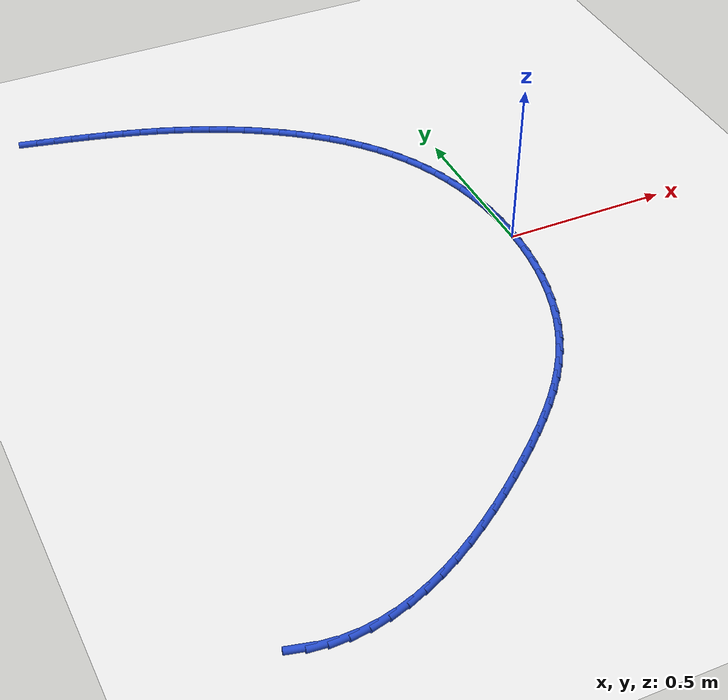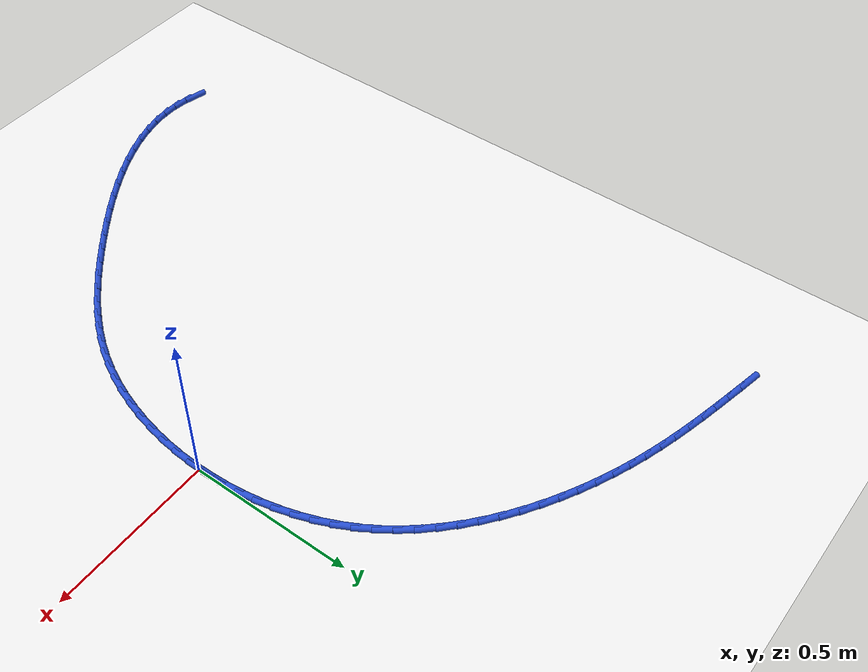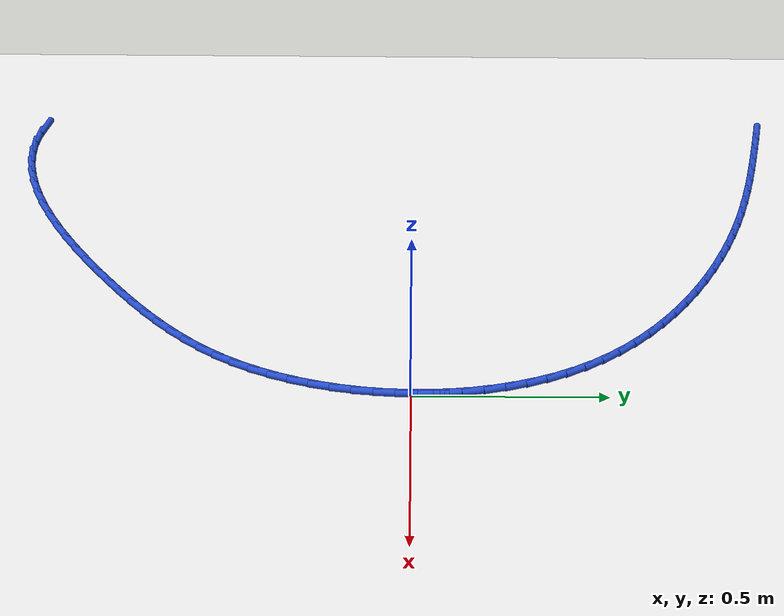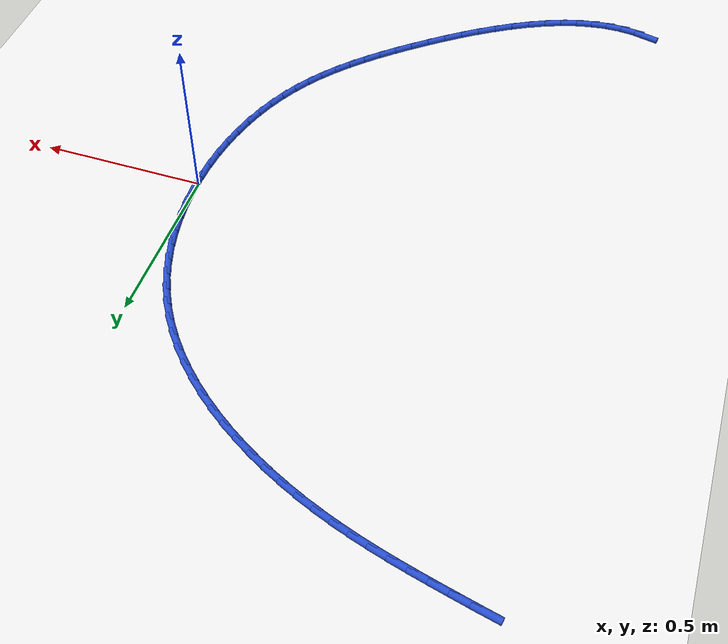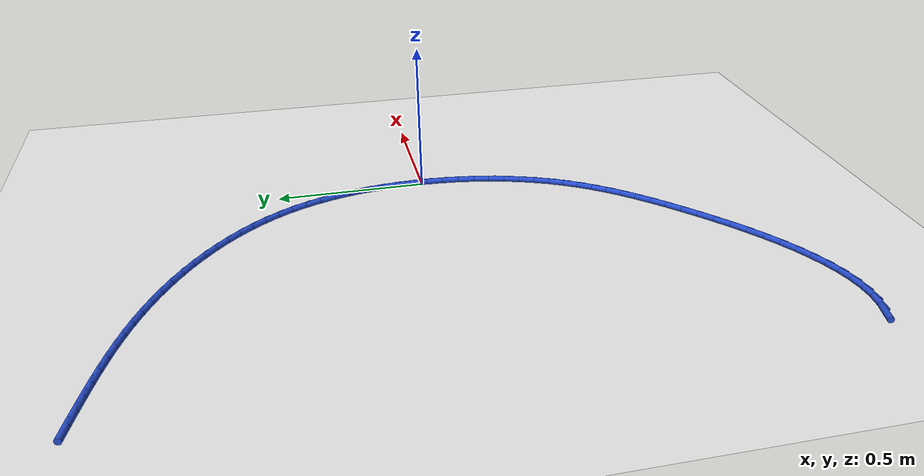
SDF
<sdf version="1.6">
 <world name="default">
  <model name="ground_plane">
   <static>1</static>
   <link name="link">
    <collision name="collision">
     <geometry><plane><normal>0 0 1</normal><size>100 100</size></plane></geometry>
     <surface><friction><ode><mu>100</mu><mu2>50</mu2></ode></friction></surface>
    </collision>
    <visual name="visual">
     <cast_shadows>0</cast_shadows>
     <geometry><plane><normal>0 0 1</normal><size>100 100</size></plane></geometry>
     <material>
      <script><uri>file://media/materials/scripts/gazebo.material</uri><name>Gazebo/WhiteGlow</name></script>
     </material>
    </visual>
   </link>
  </model>
  <model name="line">
   <link name="link_0">
    <pose>3.122502256758253e-17 -4.163336342344337e-17 0.01 0 1.57 -1.5531928244419682</pose>
    <collision name="collision">
     <geometry><cylinder><radius>0.01</radius><length>0.08</length></cylinder></geometry>
    </collision>
    <visual name="visual">
     <material>
      <script><name>Gazebo/Blue</name><uri>file://media/materials/scripts/gazebo.material</uri></script>
     </material>
     <geometry><cylinder><radius>0.01</radius><length>0.08</length></cylinder></geometry>
    </visual>
   </link>
   <link name="link_1">
    <pose>-0.0009847182210714668 0.05593298897689367 0.01 0 1.57 -1.4999605406898893</pose>
    <collision name="collision">
     <geometry><cylinder><radius>0.01</radius><length>0.08</length></cylinder></geometry>
    </collision>
    <visual name="visual">
     <material>
      <script><name>Gazebo/Blue</name><uri>file://media/materials/scripts/gazebo.material</uri></script>
     </material>
     <geometry><cylinder><radius>0.01</radius><length>0.08</length></cylinder></geometry>
    </visual>
   </link>
   <link name="link_2">
    <pose>-0.004936106482973937 0.1116220311312734 0.01 0 1.57 -1.4450767713447716</pose>
    <collision name="collision">
     <geometry><cylinder><radius>0.01</radius><length>0.08</length></cylinder></geometry>
    </collision>
    <visual name="visual">
     <material>
      <script><name>Gazebo/Blue</name><uri>file://media/materials/scripts/gazebo.material</uri></script>
     </material>
     <geometry><cylinder><radius>0.01</radius><length>0.08</length></cylinder></geometry>
    </visual>
   </link>
   <link name="link_3">
    <pose>-0.011914242280985182 0.16683486485001273 0.01 0 1.57 -1.3881900462207475</pose>
    <collision name="collision">
     <geometry><cylinder><radius>0.01</radius><length>0.08</length></cylinder></geometry>
    </collision>
    <visual name="visual">
     <material>
      <script><name>Gazebo/Blue</name><uri>file://media/materials/scripts/gazebo.material</uri></script>
     </material>
     <geometry><cylinder><radius>0.01</radius><length>0.08</length></cylinder></geometry>
    </visual>
   </link>
   <link name="link_4">
    <pose>-0.021979203110383025 0.221339228519985 0.01 0 1.57 -1.3289661561242723</pose>
    <collision name="collision">
     <geometry><cylinder><radius>0.01</radius><length>0.08</length></cylinder></geometry>
    </collision>
    <visual name="visual">
     <material>
      <script><name>Gazebo/Blue</name><uri>file://media/materials/scripts/gazebo.material</uri></script>
     </material>
     <geometry><cylinder><radius>0.01</radius><length>0.08</length></cylinder></geometry>
    </visual>
   </link>
   <link name="link_5">
    <pose>-0.035191066466445285 0.2749028605280639 0.01 0 1.57 -1.267098393019506</pose>
    <collision name="collision">
     <geometry><cylinder><radius>0.01</radius><length>0.08</length></cylinder></geometry>
    </collision>
    <visual name="visual">
     <material>
      <script><name>Gazebo/Blue</name><uri>file://media/materials/scripts/gazebo.material</uri></script>
     </material>
     <geometry><cylinder><radius>0.01</radius><length>0.08</length></cylinder></geometry>
    </visual>
   </link>
   <link name="link_6">
    <pose>-0.05160990984444981 0.3272934992611229 0.01 0 1.57 -1.2023222558466118</pose>
    <collision name="collision">
     <geometry><cylinder><radius>0.01</radius><length>0.08</length></cylinder></geometry>
    </collision>
    <visual name="visual">
     <material>
      <script><name>Gazebo/Blue</name><uri>file://media/materials/scripts/gazebo.material</uri></script>
     </material>
     <geometry><cylinder><radius>0.01</radius><length>0.08</length></cylinder></geometry>
    </visual>
   </link>
   <link name="link_7">
    <pose>-0.07129581073967439 0.37827888310603563 0.01 0 1.57 -1.134434927907412</pose>
    <collision name="collision">
     <geometry><cylinder><radius>0.01</radius><length>0.08</length></cylinder></geometry>
    </collision>
    <visual name="visual">
     <material>
      <script><name>Gazebo/Blue</name><uri>file://media/materials/scripts/gazebo.material</uri></script>
     </material>
     <geometry><cylinder><radius>0.01</radius><length>0.08</length></cylinder></geometry>
    </visual>
   </link>
   <link name="link_8">
    <pose>-0.09430884664739686 0.4276267504496754 0.01 0 1.57 -1.063331959550364</pose>
    <collision name="collision">
     <geometry><cylinder><radius>0.01</radius><length>0.08</length></cylinder></geometry>
    </collision>
    <visual name="visual">
     <material>
      <script><name>Gazebo/Blue</name><uri>file://media/materials/scripts/gazebo.material</uri></script>
     </material>
     <geometry><cylinder><radius>0.01</radius><length>0.08</length></cylinder></geometry>
    </visual>
   </link>
   <link name="link_9">
    <pose>-0.12070854376392275 0.4751052794550399 0.01 0 1.57 -0.9911056869096945</pose>
    <collision name="collision">
     <geometry><cylinder><radius>0.01</radius><length>0.08</length></cylinder></geometry>
    </collision>
    <visual name="visual">
     <material>
      <script><name>Gazebo/Blue</name><uri>file://media/materials/scripts/gazebo.material</uri></script>
     </material>
     <geometry><cylinder><radius>0.01</radius><length>0.08</length></cylinder></geometry>
    </visual>
   </link>
   <link name="link_10">
    <pose>-0.15046500735781818 0.5205539801594176 0.01 0 1.57 -0.9223022229733996</pose>
    <collision name="collision">
     <geometry><cylinder><radius>0.01</radius><length>0.08</length></cylinder></geometry>
    </collision>
    <visual name="visual">
     <material>
      <script><name>Gazebo/Blue</name><uri>file://media/materials/scripts/gazebo.material</uri></script>
     </material>
     <geometry><cylinder><radius>0.01</radius><length>0.08</length></cylinder></geometry>
    </visual>
   </link>
   <link name="link_11">
    <pose>-0.18336087672037601 0.5639619058878136 0.01 0 1.57 -0.8575902184803497</pose>
    <collision name="collision">
     <geometry><cylinder><radius>0.01</radius><length>0.08</length></cylinder></geometry>
    </collision>
    <visual name="visual">
     <material>
      <script><name>Gazebo/Blue</name><uri>file://media/materials/scripts/gazebo.material</uri></script>
     </material>
     <geometry><cylinder><radius>0.01</radius><length>0.08</length></cylinder></geometry>
    </visual>
   </link>
   <link name="link_12">
    <pose>-0.21915519316605117 0.6053369342825364 0.01 0 1.57 -0.7969424181860959</pose>
    <collision name="collision">
     <geometry><cylinder><radius>0.01</radius><length>0.08</length></cylinder></geometry>
    </collision>
    <visual name="visual">
     <material>
      <script><name>Gazebo/Blue</name><uri>file://media/materials/scripts/gazebo.material</uri></script>
     </material>
     <geometry><cylinder><radius>0.01</radius><length>0.08</length></cylinder></geometry>
    </visual>
   </link>
   <link name="link_13">
    <pose>-0.25760699800929865 0.6446869429858945 0.01 0 1.57 -0.74021903518429</pose>
    <collision name="collision">
     <geometry><cylinder><radius>0.01</radius><length>0.08</length></cylinder></geometry>
    </collision>
    <visual name="visual">
     <material>
      <script><name>Gazebo/Blue</name><uri>file://media/materials/scripts/gazebo.material</uri></script>
     </material>
     <geometry><cylinder><radius>0.01</radius><length>0.08</length></cylinder></geometry>
    </visual>
   </link>
   <link name="link_14">
    <pose>-0.2984753325645734 0.6820198096401965 0.01 0 1.57 -0.6872009292060717</pose>
    <collision name="collision">
     <geometry><cylinder><radius>0.01</radius><length>0.08</length></cylinder></geometry>
    </collision>
    <visual name="visual">
     <material>
      <script><name>Gazebo/Blue</name><uri>file://media/materials/scripts/gazebo.material</uri></script>
     </material>
     <geometry><cylinder><radius>0.01</radius><length>0.08</length></cylinder></geometry>
    </visual>
   </link>
   <link name="link_15">
    <pose>-0.34151923814633045 0.7173434118877506 0.01 0 1.57 -0.6376176279795549</pose>
    <collision name="collision">
     <geometry><cylinder><radius>0.01</radius><length>0.08</length></cylinder></geometry>
    </collision>
    <visual name="visual">
     <material>
      <script><name>Gazebo/Blue</name><uri>file://media/materials/scripts/gazebo.material</uri></script>
     </material>
     <geometry><cylinder><radius>0.01</radius><length>0.08</length></cylinder></geometry>
    </visual>
   </link>
   <link name="link_16">
    <pose>-0.38649775606902464 0.7506656273708654 0.01 0 1.57 -0.5911691370519883</pose>
    <collision name="collision">
     <geometry><cylinder><radius>0.01</radius><length>0.08</length></cylinder></geometry>
    </collision>
    <visual name="visual">
     <material>
      <script><name>Gazebo/Blue</name><uri>file://media/materials/scripts/gazebo.material</uri></script>
     </material>
     <geometry><cylinder><radius>0.01</radius><length>0.08</length></cylinder></geometry>
    </visual>
   </link>
   <link name="link_17">
    <pose>-0.433169927647111 0.7819943337318493 0.01 0 1.57 -0.547541696669059</pose>
    <collision name="collision">
     <geometry><cylinder><radius>0.01</radius><length>0.08</length></cylinder></geometry>
    </collision>
    <visual name="visual">
     <material>
      <script><name>Gazebo/Blue</name><uri>file://media/materials/scripts/gazebo.material</uri></script>
     </material>
     <geometry><cylinder><radius>0.01</radius><length>0.08</length></cylinder></geometry>
    </visual>
   </link>
   <link name="link_18">
    <pose>-0.48129479419504434 0.8113374086130105 0.01 0 1.57 -0.5064182588813781</pose>
    <collision name="collision">
     <geometry><cylinder><radius>0.01</radius><length>0.08</length></cylinder></geometry>
    </collision>
    <visual name="visual">
     <material>
      <script><name>Gazebo/Blue</name><uri>file://media/materials/scripts/gazebo.material</uri></script>
     </material>
     <geometry><cylinder><radius>0.01</radius><length>0.08</length></cylinder></geometry>
    </visual>
   </link>
   <link name="link_19">
    <pose>-0.53063139702728 0.8387027296566583 0.01 0 1.57 -0.4674846545025905</pose>
    <collision name="collision">
     <geometry><cylinder><radius>0.01</radius><length>0.08</length></cylinder></geometry>
    </collision>
    <visual name="visual">
     <material>
      <script><name>Gazebo/Blue</name><uri>file://media/materials/scripts/gazebo.material</uri></script>
     </material>
     <geometry><cylinder><radius>0.01</radius><length>0.08</length></cylinder></geometry>
    </visual>
   </link>
   <link name="link_20">
    <pose>-0.5809387774582727 0.8640981745051004 0.01 0 1.57 -0.43043237048204086</pose>
    <collision name="collision">
     <geometry><cylinder><radius>0.01</radius><length>0.08</length></cylinder></geometry>
    </collision>
    <visual name="visual">
     <material>
      <script><name>Gazebo/Blue</name><uri>file://media/materials/scripts/gazebo.material</uri></script>
     </material>
     <geometry><cylinder><radius>0.01</radius><length>0.08</length></cylinder></geometry>
    </visual>
   </link>
   <link name="link_21">
    <pose>-0.6319759768024773 0.8875316208006453 0.01 0 1.57 -0.39495868921000316</pose>
    <collision name="collision">
     <geometry><cylinder><radius>0.01</radius><length>0.08</length></cylinder></geometry>
    </collision>
    <visual name="visual">
     <material>
      <script><name>Gazebo/Blue</name><uri>file://media/materials/scripts/gazebo.material</uri></script>
     </material>
     <geometry><cylinder><radius>0.01</radius><length>0.08</length></cylinder></geometry>
    </visual>
   </link>
   <link name="link_22">
    <pose>-0.6835020363743489 0.9090109461856017 0.01 0 1.57 -0.36078240473598167</pose>
    <collision name="collision">
     <geometry><cylinder><radius>0.01</radius><length>0.08</length></cylinder></geometry>
    </collision>
    <visual name="visual">
     <material>
      <script><name>Gazebo/Blue</name><uri>file://media/materials/scripts/gazebo.material</uri></script>
     </material>
     <geometry><cylinder><radius>0.01</radius><length>0.08</length></cylinder></geometry>
    </visual>
   </link>
   <link name="link_23">
    <pose>-0.7352782821928701 0.9285459357905966 0.01 0 1.57 -0.32857279016959345</pose>
    <collision name="collision">
     <geometry><cylinder><radius>0.01</radius><length>0.08</length></cylinder></geometry>
    </collision>
    <visual name="visual">
     <material>
      <script><name>Gazebo/Blue</name><uri>file://media/materials/scripts/gazebo.material</uri></script>
     </material>
     <geometry><cylinder><radius>0.01</radius><length>0.08</length></cylinder></geometry>
    </visual>
   </link>
   <link name="link_24">
    <pose>-0.7871786248459193 0.946240371036562 0.01 0 1.57 -0.29980031878819613</pose>
    <collision name="collision">
     <geometry><cylinder><radius>0.01</radius><length>0.08</length></cylinder></geometry>
    </collision>
    <visual name="visual">
     <material>
      <script><name>Gazebo/Blue</name><uri>file://media/materials/scripts/gazebo.material</uri></script>
     </material>
     <geometry><cylinder><radius>0.01</radius><length>0.08</length></cylinder></geometry>
    </visual>
   </link>
   <link name="link_25">
    <pose>-0.8392386870631258 0.9623330459982139 0.01 0 1.57 -0.27487305391091243</pose>
    <collision name="collision">
     <geometry><cylinder><radius>0.01</radius><length>0.08</length></cylinder></geometry>
    </collision>
    <visual name="visual">
     <material>
      <script><name>Gazebo/Blue</name><uri>file://media/materials/scripts/gazebo.material</uri></script>
     </material>
     <geometry><cylinder><radius>0.01</radius><length>0.08</length></cylinder></geometry>
    </visual>
   </link>
   <link name="link_26">
    <pose>-0.8915066074645106 0.9770732042042053 0.01 0 1.57 -0.2540232455767808</pose>
    <collision name="collision">
     <geometry><cylinder><radius>0.01</radius><length>0.08</length></cylinder></geometry>
    </collision>
    <visual name="visual">
     <material>
      <script><name>Gazebo/Blue</name><uri>file://media/materials/scripts/gazebo.material</uri></script>
     </material>
     <geometry><cylinder><radius>0.01</radius><length>0.08</length></cylinder></geometry>
    </visual>
   </link>
   <link name="link_27">
    <pose>-0.9440305246700946 0.9907100891831887 0.01 0 1.57 -0.23740777313400904</pose>
    <collision name="collision">
     <geometry><cylinder><radius>0.01</radius><length>0.08</length></cylinder></geometry>
    </collision>
    <visual name="visual">
     <material>
      <script><name>Gazebo/Blue</name><uri>file://media/materials/scripts/gazebo.material</uri></script>
     </material>
     <geometry><cylinder><radius>0.01</radius><length>0.08</length></cylinder></geometry>
    </visual>
   </link>
   <link name="link_28">
    <pose>-0.9968585772998986 1.0034929444638172 0.01 0 1.57 -0.22511439041735556</pose>
    <collision name="collision">
     <geometry><cylinder><radius>0.01</radius><length>0.08</length></cylinder></geometry>
    </collision>
    <visual name="visual">
     <material>
      <script><name>Gazebo/Blue</name><uri>file://media/materials/scripts/gazebo.material</uri></script>
     </material>
     <geometry><cylinder><radius>0.01</radius><length>0.08</length></cylinder></geometry>
    </visual>
   </link>
   <link name="link_29">
    <pose>-1.050038903973943 1.0156710135747433 0.01 0 1.57 -0.21716907966617977</pose>
    <collision name="collision">
     <geometry><cylinder><radius>0.01</radius><length>0.08</length></cylinder></geometry>
    </collision>
    <visual name="visual">
     <material>
      <script><name>Gazebo/Blue</name><uri>file://media/materials/scripts/gazebo.material</uri></script>
     </material>
     <geometry><cylinder><radius>0.01</radius><length>0.08</length></cylinder></geometry>
    </visual>
   </link>
   <link name="link_30">
    <pose>-1.1036196433122492 1.02749354004462 0.01 0 1.57 -0.21270105275947596</pose>
    <collision name="collision">
     <geometry><cylinder><radius>0.01</radius><length>0.08</length></cylinder></geometry>
    </collision>
    <visual name="visual">
     <material>
      <script><name>Gazebo/Blue</name><uri>file://media/materials/scripts/gazebo.material</uri></script>
     </material>
     <geometry><cylinder><radius>0.01</radius><length>0.08</length></cylinder></geometry>
    </visual>
   </link>
   <link name="link_31">
    <pose>-1.1576371794722855 1.0391595905777025 0.01 0 1.57 -0.20379413120420073</pose>
    <collision name="collision">
     <geometry><cylinder><radius>0.01</radius><length>0.08</length></cylinder></geometry>
    </collision>
    <visual name="visual">
     <material>
      <script><name>Gazebo/Blue</name><uri>file://media/materials/scripts/gazebo.material</uri></script>
     </material>
     <geometry><cylinder><radius>0.01</radius><length>0.08</length></cylinder></geometry>
    </visual>
   </link>
   <link name="link_98">
    <pose>-1.1625380427628051 -1.1187260238925607 0.01 0 1.57 -0.2326410927781479</pose>
    <collision name="collision">
     <geometry><cylinder><radius>0.01</radius><length>0.08</length></cylinder></geometry>
    </collision>
    <visual name="visual">
     <material>
      <script><name>Gazebo/Blue</name><uri>file://media/materials/scripts/gazebo.material</uri></script>
     </material>
     <geometry><cylinder><radius>0.01</radius><length>0.08</length></cylinder></geometry>
    </visual>
   </link>
   <link name="link_99">
    <pose>-1.1137476794815702 -1.1302859724006882 0.01 0 1.57 -0.09239478773831672</pose>
    <collision name="collision">
     <geometry><cylinder><radius>0.01</radius><length>0.08</length></cylinder></geometry>
    </collision>
    <visual name="visual">
     <material>
      <script><name>Gazebo/Blue</name><uri>file://media/materials/scripts/gazebo.material</uri></script>
     </material>
     <geometry><cylinder><radius>0.01</radius><length>0.08</length></cylinder></geometry>
    </visual>
   </link>
   <link name="link_100">
    <pose>-1.0637820191070158 -1.1349157208965002 0.01 0 1.57 0.034913366359299126</pose>
    <collision name="collision">
     <geometry><cylinder><radius>0.01</radius><length>0.08</length></cylinder></geometry>
    </collision>
    <visual name="visual">
     <material>
      <script><name>Gazebo/Blue</name><uri>file://media/materials/scripts/gazebo.material</uri></script>
     </material>
     <geometry><cylinder><radius>0.01</radius><length>0.08</length></cylinder></geometry>
    </visual>
   </link>
   <link name="link_101">
    <pose>-1.0128602269876805 -1.1331371469936746 0.01 0 1.57 0.14730317651650243</pose>
    <collision name="collision">
     <geometry><cylinder><radius>0.01</radius><length>0.08</length></cylinder></geometry>
    </collision>
    <visual name="visual">
     <material>
      <script><name>Gazebo/Blue</name><uri>file://media/materials/scripts/gazebo.material</uri></script>
     </material>
     <geometry><cylinder><radius>0.01</radius><length>0.08</length></cylinder></geometry>
    </visual>
   </link>
   <link name="link_102">
    <pose>-0.9612014684721051 -1.1254721283058906 0.01 0 1.57 0.24471611590017533</pose>
    <collision name="collision">
     <geometry><cylinder><radius>0.01</radius><length>0.08</length></cylinder></geometry>
    </collision>
    <visual name="visual">
     <material>
      <script><name>Gazebo/Blue</name><uri>file://media/materials/scripts/gazebo.material</uri></script>
     </material>
     <geometry><cylinder><radius>0.01</radius><length>0.08</length></cylinder></geometry>
    </visual>
   </link>
   <link name="link_103">
    <pose>-0.9090249089088301 -1.1124425424468258 0.01 0 1.57 0.3282629832429757</pose>
    <collision name="collision">
     <geometry><cylinder><radius>0.01</radius><length>0.08</length></cylinder></geometry>
    </collision>
    <visual name="visual">
     <material>
      <script><name>Gazebo/Blue</name><uri>file://media/materials/scripts/gazebo.material</uri></script>
     </material>
     <geometry><cylinder><radius>0.01</radius><length>0.08</length></cylinder></geometry>
    </visual>
   </link>
   <link name="link_104">
    <pose>-0.8565497136463952 -1.094570267030159 0.01 0 1.57 0.3995694246084779</pose>
    <collision name="collision">
     <geometry><cylinder><radius>0.01</radius><length>0.08</length></cylinder></geometry>
    </collision>
    <visual name="visual">
     <material>
      <script><name>Gazebo/Blue</name><uri>file://media/materials/scripts/gazebo.material</uri></script>
     </material>
     <geometry><cylinder><radius>0.01</radius><length>0.08</length></cylinder></geometry>
    </visual>
   </link>
   <link name="link_105">
    <pose>-0.8039950480333404 -1.0723771796695678 0.01 0 1.57 0.46035362330246093</pose>
    <collision name="collision">
     <geometry><cylinder><radius>0.01</radius><length>0.08</length></cylinder></geometry>
    </collision>
    <visual name="visual">
     <material>
      <script><name>Gazebo/Blue</name><uri>file://media/materials/scripts/gazebo.material</uri></script>
     </material>
     <geometry><cylinder><radius>0.01</radius><length>0.08</length></cylinder></geometry>
    </visual>
   </link>
   <link name="link_106">
    <pose>-0.7515800774182064 -1.0463851579787318 0.01 0 1.57 0.5122072708095332</pose>
    <collision name="collision">
     <geometry><cylinder><radius>0.01</radius><length>0.08</length></cylinder></geometry>
    </collision>
    <visual name="visual">
     <material>
      <script><name>Gazebo/Blue</name><uri>file://media/materials/scripts/gazebo.material</uri></script>
     </material>
     <geometry><cylinder><radius>0.01</radius><length>0.08</length></cylinder></geometry>
    </visual>
   </link>
   <link name="link_107">
    <pose>-0.699523967149532 -1.0171160795713277 0.01 0 1.57 0.5565075774588828</pose>
    <collision name="collision">
     <geometry><cylinder><radius>0.01</radius><length>0.08</length></cylinder></geometry>
    </collision>
    <visual name="visual">
     <material>
      <script><name>Gazebo/Blue</name><uri>file://media/materials/scripts/gazebo.material</uri></script>
     </material>
     <geometry><cylinder><radius>0.01</radius><length>0.08</length></cylinder></geometry>
    </visual>
   </link>
   <link name="link_108">
    <pose>-0.6480458825758593 -0.9850918220610354 0.01 0 1.57 0.5943994333261796</pose>
    <collision name="collision">
     <geometry><cylinder><radius>0.01</radius><length>0.08</length></cylinder></geometry>
    </collision>
    <visual name="visual">
     <material>
      <script><name>Gazebo/Blue</name><uri>file://media/materials/scripts/gazebo.material</uri></script>
     </material>
     <geometry><cylinder><radius>0.01</radius><length>0.08</length></cylinder></geometry>
    </visual>
   </link>
   <link name="link_109">
    <pose>-0.5973649890457275 -0.9508342630615324 0.01 0 1.57 0.6268090435591626</pose>
    <collision name="collision">
     <geometry><cylinder><radius>0.01</radius><length>0.08</length></cylinder></geometry>
    </collision>
    <visual name="visual">
     <material>
      <script><name>Gazebo/Blue</name><uri>file://media/materials/scripts/gazebo.material</uri></script>
     </material>
     <geometry><cylinder><radius>0.01</radius><length>0.08</length></cylinder></geometry>
    </visual>
   </link>
   <link name="link_110">
    <pose>-0.547700451907676 -0.9148652801864965 0.01 0 1.57 0.6544677790265513</pose>
    <collision name="collision">
     <geometry><cylinder><radius>0.01</radius><length>0.08</length></cylinder></geometry>
    </collision>
    <visual name="visual">
     <material>
      <script><name>Gazebo/Blue</name><uri>file://media/materials/scripts/gazebo.material</uri></script>
     </material>
     <geometry><cylinder><radius>0.01</radius><length>0.08</length></cylinder></geometry>
    </visual>
   </link>
   <link name="link_111">
    <pose>-0.4992714365102466 -0.8777067510496073 0.01 0 1.57 0.6779355221905046</pose>
    <collision name="collision">
     <geometry><cylinder><radius>0.01</radius><length>0.08</length></cylinder></geometry>
    </collision>
    <visual name="visual">
     <material>
      <script><name>Gazebo/Blue</name><uri>file://media/materials/scripts/gazebo.material</uri></script>
     </material>
     <geometry><cylinder><radius>0.01</radius><length>0.08</length></cylinder></geometry>
    </visual>
   </link>
   <link name="link_112">
    <pose>-0.45229710820197855 -0.8398805532645428 0.01 0 1.57 0.697871001946779</pose>
    <collision name="collision">
     <geometry><cylinder><radius>0.01</radius><length>0.08</length></cylinder></geometry>
    </collision>
    <visual name="visual">
     <material>
      <script><name>Gazebo/Blue</name><uri>file://media/materials/scripts/gazebo.material</uri></script>
     </material>
     <geometry><cylinder><radius>0.01</radius><length>0.08</length></cylinder></geometry>
    </visual>
   </link>
   <link name="link_113">
    <pose>-0.4069936550278589 -0.8018865642465761 0.01 0 1.57 0.7191038420079698</pose>
    <collision name="collision">
     <geometry><cylinder><radius>0.01</radius><length>0.08</length></cylinder></geometry>
    </collision>
    <visual name="visual">
     <material>
      <script><name>Gazebo/Blue</name><uri>file://media/materials/scripts/gazebo.material</uri></script>
     </material>
     <geometry><cylinder><radius>0.01</radius><length>0.08</length></cylinder></geometry>
    </visual>
   </link>
   <link name="link_114">
    <pose>-0.36352377331494035 -0.7638293948932904 0.01 0 1.57 0.7458320343923536</pose>
    <collision name="collision">
     <geometry><cylinder><radius>0.01</radius><length>0.08</length></cylinder></geometry>
    </collision>
    <visual name="visual">
     <material>
      <script><name>Gazebo/Blue</name><uri>file://media/materials/scripts/gazebo.material</uri></script>
     </material>
     <geometry><cylinder><radius>0.01</radius><length>0.08</length></cylinder></geometry>
    </visual>
   </link>
   <link name="link_115">
    <pose>-0.32200386746727805 -0.7254715910516965 0.01 0 1.57 0.778406761060851</pose>
    <collision name="collision">
     <geometry><cylinder><radius>0.01</radius><length>0.08</length></cylinder></geometry>
    </collision>
    <visual name="visual">
     <material>
      <script><name>Gazebo/Blue</name><uri>file://media/materials/scripts/gazebo.material</uri></script>
     </material>
     <geometry><cylinder><radius>0.01</radius><length>0.08</length></cylinder></geometry>
    </visual>
   </link>
   <link name="link_116">
    <pose>-0.2825488139839336 -0.6865644084156758 0.01 0 1.57 0.8169538221754239</pose>
    <collision name="collision">
     <geometry><cylinder><radius>0.01</radius><length>0.08</length></cylinder></geometry>
    </collision>
    <visual name="visual">
     <material>
      <script><name>Gazebo/Blue</name><uri>file://media/materials/scripts/gazebo.material</uri></script>
     </material>
     <geometry><cylinder><radius>0.01</radius><length>0.08</length></cylinder></geometry>
    </visual>
   </link>
   <link name="link_117">
    <pose>-0.245273489363967 -0.6468591026791083 0.01 0 1.57 0.8614591666133815</pose>
    <collision name="collision">
     <geometry><cylinder><radius>0.01</radius><length>0.08</length></cylinder></geometry>
    </collision>
    <visual name="visual">
     <material>
      <script><name>Gazebo/Blue</name><uri>file://media/materials/scripts/gazebo.material</uri></script>
     </material>
     <geometry><cylinder><radius>0.01</radius><length>0.08</length></cylinder></geometry>
    </visual>
   </link>
   <link name="link_118">
    <pose>-0.2102927701064385 -0.6061069295358743 0.01 0 1.57 0.9117209998971904</pose>
    <collision name="collision">
     <geometry><cylinder><radius>0.01</radius><length>0.08</length></cylinder></geometry>
    </collision>
    <visual name="visual">
     <material>
      <script><name>Gazebo/Blue</name><uri>file://media/materials/scripts/gazebo.material</uri></script>
     </material>
     <geometry><cylinder><radius>0.01</radius><length>0.08</length></cylinder></geometry>
    </visual>
   </link>
   <link name="link_119">
    <pose>-0.17772153271040947 -0.5640591446798553 0.01 0 1.57 0.9673061339015481</pose>
    <collision name="collision">
     <geometry><cylinder><radius>0.01</radius><length>0.08</length></cylinder></geometry>
    </collision>
    <visual name="visual">
     <material>
      <script><name>Gazebo/Blue</name><uri>file://media/materials/scripts/gazebo.material</uri></script>
     </material>
     <geometry><cylinder><radius>0.01</radius><length>0.08</length></cylinder></geometry>
    </visual>
   </link>
   <link name="link_120">
    <pose>-0.14767465367494026 -0.5204670038049316 0.01 0 1.57 1.0275222337975287</pose>
    <collision name="collision">
     <geometry><cylinder><radius>0.01</radius><length>0.08</length></cylinder></geometry>
    </collision>
    <visual name="visual">
     <material>
      <script><name>Gazebo/Blue</name><uri>file://media/materials/scripts/gazebo.material</uri></script>
     </material>
     <geometry><cylinder><radius>0.01</radius><length>0.08</length></cylinder></geometry>
    </visual>
   </link>
   <link name="link_121">
    <pose>-0.12026700949909128 -0.4750817626049837 0.01 0 1.57 1.0909572993806058</pose>
    <collision name="collision">
     <geometry><cylinder><radius>0.01</radius><length>0.08</length></cylinder></geometry>
    </collision>
    <visual name="visual">
     <material>
      <script><name>Gazebo/Blue</name><uri>file://media/materials/scripts/gazebo.material</uri></script>
     </material>
     <geometry><cylinder><radius>0.01</radius><length>0.08</length></cylinder></geometry>
    </visual>
   </link>
   <link name="link_122">
    <pose>-0.09560560526633816 -0.4276930085586224 0.01 0 1.57 1.1532430574663872</pose>
    <collision name="collision">
     <geometry><cylinder><radius>0.01</radius><length>0.08</length></cylinder></geometry>
    </collision>
    <visual name="visual">
     <material>
      <script><name>Gazebo/Blue</name><uri>file://media/materials/scripts/gazebo.material</uri></script>
     </material>
     <geometry><cylinder><radius>0.01</radius><length>0.08</length></cylinder></geometry>
    </visual>
   </link>
   <link name="link_123">
    <pose>-0.07373491431748504 -0.3783948427701135 0.01 0 1.57 1.2128473014526475</pose>
    <collision name="collision">
     <geometry><cylinder><radius>0.01</radius><length>0.08</length></cylinder></geometry>
    </collision>
    <visual name="visual">
     <material>
      <script><name>Gazebo/Blue</name><uri>file://media/materials/scripts/gazebo.material</uri></script>
     </material>
     <geometry><cylinder><radius>0.01</radius><length>0.08</length></cylinder></geometry>
    </visual>
   </link>
   <link name="link_124">
    <pose>-0.05466958246663525 -0.3274266187853225 0.01 0 1.57 1.2701537350967556</pose>
    <collision name="collision">
     <geometry><cylinder><radius>0.01</radius><length>0.08</length></cylinder></geometry>
    </collision>
    <visual name="visual">
     <material>
      <script><name>Gazebo/Blue</name><uri>file://media/materials/scripts/gazebo.material</uri></script>
     </material>
     <geometry><cylinder><radius>0.01</radius><length>0.08</length></cylinder></geometry>
    </visual>
   </link>
   <link name="link_125">
    <pose>-0.03842407163486702 -0.2750285856622016 0.01 0 1.57 1.3255660042067938</pose>
    <collision name="collision">
     <geometry><cylinder><radius>0.01</radius><length>0.08</length></cylinder></geometry>
    </collision>
    <visual name="visual">
     <material>
      <script><name>Gazebo/Blue</name><uri>file://media/materials/scripts/gazebo.material</uri></script>
     </material>
     <geometry><cylinder><radius>0.01</radius><length>0.08</length></cylinder></geometry>
    </visual>
   </link>
   <link name="link_126">
    <pose>-0.025012843743258757 -0.22144099245870305 0.01 0 1.57 1.3794889787950007</pose>
    <collision name="collision">
     <geometry><cylinder><radius>0.01</radius><length>0.08</length></cylinder></geometry>
    </collision>
    <visual name="visual">
     <material>
      <script><name>Gazebo/Blue</name><uri>file://media/materials/scripts/gazebo.material</uri></script>
     </material>
     <geometry><cylinder><radius>0.01</radius><length>0.08</length></cylinder></geometry>
    </visual>
   </link>
   <link name="link_127">
    <pose>-0.014450360712889462 -0.16690408823278113 0.01 0 1.57 1.4323246147424027</pose>
    <collision name="collision">
     <geometry><cylinder><radius>0.01</radius><length>0.08</length></cylinder></geometry>
    </collision>
    <visual name="visual">
     <material>
      <script><name>Gazebo/Blue</name><uri>file://media/materials/scripts/gazebo.material</uri></script>
     </material>
     <geometry><cylinder><radius>0.01</radius><length>0.08</length></cylinder></geometry>
    </visual>
   </link>
   <link name="link_128">
    <pose>-0.0067510844648375114 -0.11165812204238815 0.01 0 1.57 1.4844704980668524</pose>
    <collision name="collision">
     <geometry><cylinder><radius>0.01</radius><length>0.08</length></cylinder></geometry>
    </collision>
    <visual name="visual">
     <material>
      <script><name>Gazebo/Blue</name><uri>file://media/materials/scripts/gazebo.material</uri></script>
     </material>
     <geometry><cylinder><radius>0.01</radius><length>0.08</length></cylinder></geometry>
    </visual>
   </link>
   <link name="link_129">
    <pose>-0.001929476920181486 -0.05594334294547682 0.01 0 1.57 1.5363201533113557</pose>
    <collision name="collision">
     <geometry><cylinder><radius>0.01</radius><length>0.08</length></cylinder></geometry>
    </collision>
    <visual name="visual">
     <material>
      <script><name>Gazebo/Blue</name><uri>file://media/materials/scripts/gazebo.material</uri></script>
     </material>
     <geometry><cylinder><radius>0.01</radius><length>0.08</length></cylinder></geometry>
    </visual>
   </link>
   <link name="link_130">
    <pose>1.3877787807814457e-17 -1.3877787807814457e-16 0.01 0 1.57 -1.5533282902710996</pose>
    <collision name="collision">
     <geometry><cylinder><radius>0.01</radius><length>0.08</length></cylinder></geometry>
    </collision>
    <visual name="visual">
     <material>
      <script><name>Gazebo/Blue</name><uri>file://media/materials/scripts/gazebo.material</uri></script>
     </material>
     <geometry><cylinder><radius>0.01</radius><length>0.08</length></cylinder></geometry>
    </visual>
   </link>
   <link name="link_131">
    <pose>-0.0009771156253716058 0.05593165773608898 0.01 0 1.57 -1.5533282902710994</pose>
    <collision name="collision">
     <geometry><cylinder><radius>0.01</radius><length>0.08</length></cylinder></geometry>
    </collision>
    <visual name="visual">
     <material>
      <script><name>Gazebo/Blue</name><uri>file://media/materials/scripts/gazebo.material</uri></script>
     </material>
     <geometry><cylinder><radius>0.01</radius><length>0.08</length></cylinder></geometry>
    </visual>
   </link>
  </model>
 </world>
</sdf>
